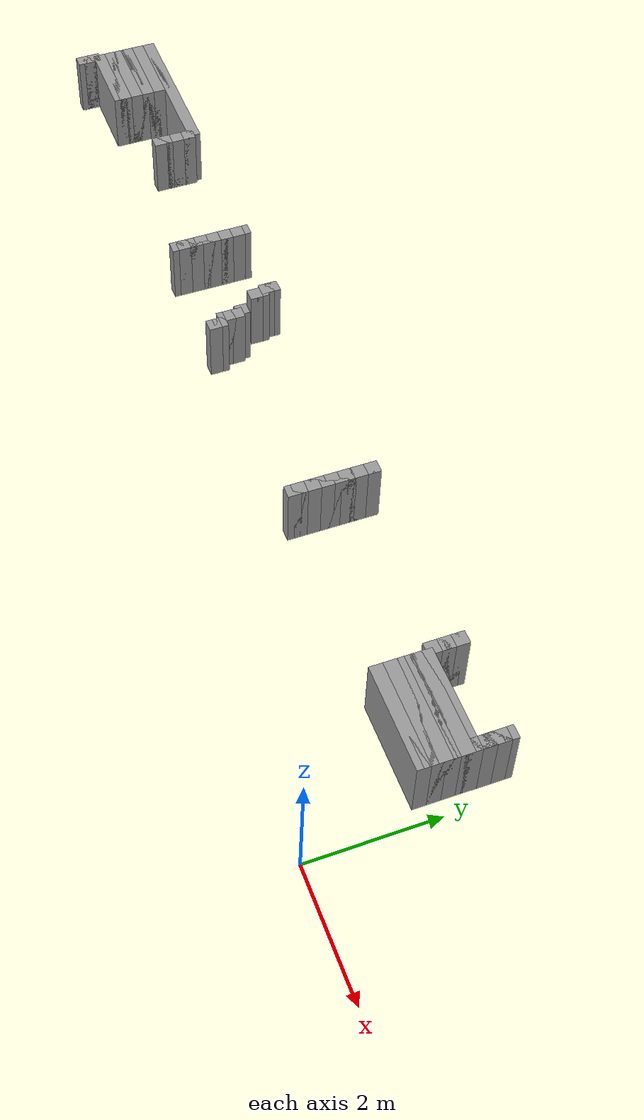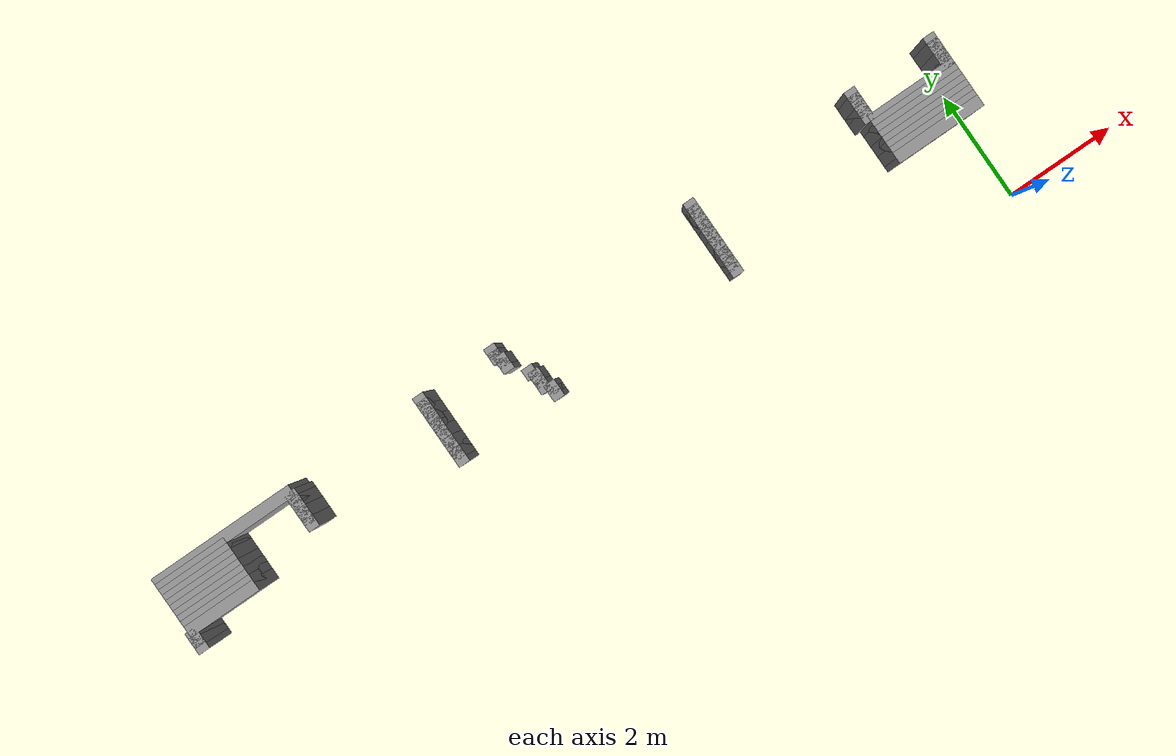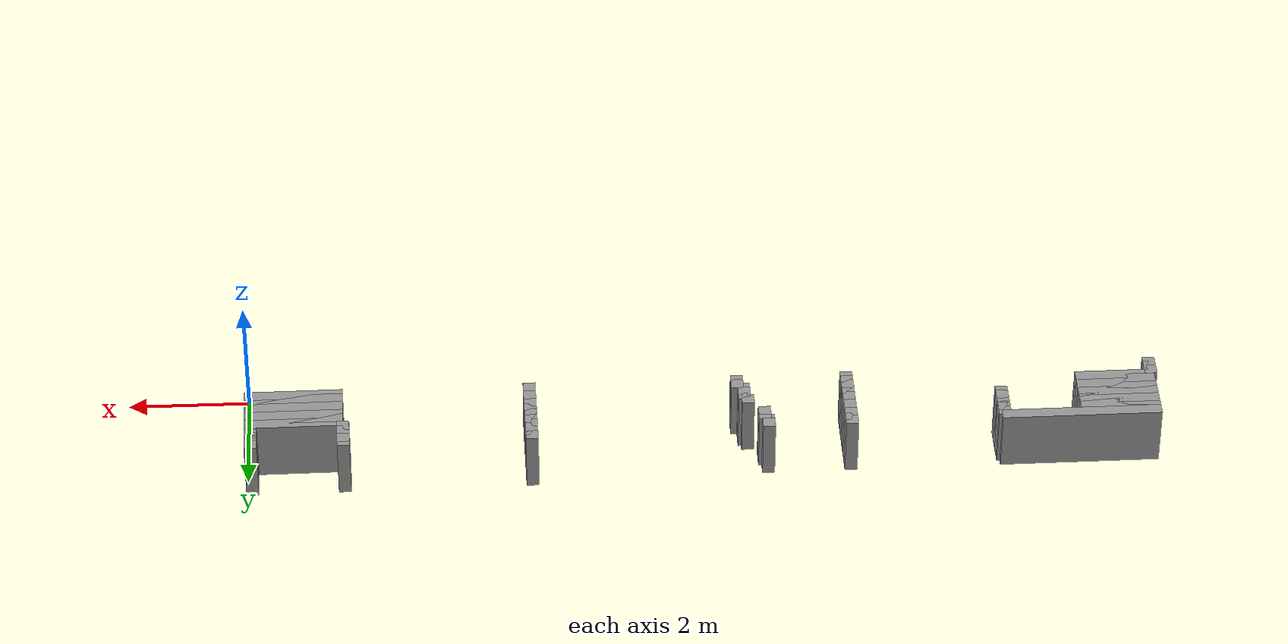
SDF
<sdf version="1.6">
 <world name="GridMap">
  <model name="GridMap">
   <link name="Wall_(148.5,15.0)">
    <collision name="Wall_(148.5,15.0)_Collision">
     <geometry><box><size>0.2 0.2 1.0</size></box></geometry>
     <pose>-14.850000000000001 1.5 0.5 0 -0 0</pose>
    </collision>
    <visual name="Wall_(148.5,15.0)_Visual">
     <geometry><box><size>0.2 0.2 1.0</size></box></geometry>
     <pose>-14.850000000000001 1.5 0.5 0 -0 0</pose>
     <material>
      <script><uri>file://media/materials/scripts/gazebo.material</uri><name>Gazebo/Grey</name></script>
      <ambient>1 1 1 1</ambient>
     </material>
     <meta><layer>0</layer></meta>
    </visual>
    <pose>0 0 0.5 0 -0 0</pose>
   </link>
   <link name="Wall_(8.0,16.0)">
    <collision name="Wall_(8.0,16.0)_Collision">
     <geometry><box><size>1.6 0.2 1.0</size></box></geometry>
     <pose>-0.8 1.6 0.5 0 -0 0</pose>
    </collision>
    <visual name="Wall_(8.0,16.0)_Visual">
     <geometry><box><size>1.6 0.2 1.0</size></box></geometry>
     <pose>-0.8 1.6 0.5 0 -0 0</pose>
     <material>
      <script><uri>file://media/materials/scripts/gazebo.material</uri><name>Gazebo/Grey</name></script>
      <ambient>1 1 1 1</ambient>
     </material>
     <meta><layer>0</layer></meta>
    </visual>
    <pose>0 0 0.5 0 -0 0</pose>
   </link>
   <link name="Wall_(46.5,16.0)">
    <collision name="Wall_(46.5,16.0)_Collision">
     <geometry><box><size>0.2 0.2 1.0</size></box></geometry>
     <pose>-4.65 1.6 0.5 0 -0 0</pose>
    </collision>
    <visual name="Wall_(46.5,16.0)_Visual">
     <geometry><box><size>0.2 0.2 1.0</size></box></geometry>
     <pose>-4.65 1.6 0.5 0 -0 0</pose>
     <material>
      <script><uri>file://media/materials/scripts/gazebo.material</uri><name>Gazebo/Grey</name></script>
      <ambient>1 1 1 1</ambient>
     </material>
     <meta><layer>0</layer></meta>
    </visual>
    <pose>0 0 0.5 0 -0 0</pose>
   </link>
   <link name="Wall_(80.5,16.0)">
    <collision name="Wall_(80.5,16.0)_Collision">
     <geometry><box><size>0.2 0.2 1.0</size></box></geometry>
     <pose>-8.05 1.6 0.5 0 -0 0</pose>
    </collision>
    <visual name="Wall_(80.5,16.0)_Visual">
     <geometry><box><size>0.2 0.2 1.0</size></box></geometry>
     <pose>-8.05 1.6 0.5 0 -0 0</pose>
     <material>
      <script><uri>file://media/materials/scripts/gazebo.material</uri><name>Gazebo/Grey</name></script>
      <ambient>1 1 1 1</ambient>
     </material>
     <meta><layer>0</layer></meta>
    </visual>
    <pose>0 0 0.5 0 -0 0</pose>
   </link>
   <link name="Wall_(98.5,16.0)">
    <collision name="Wall_(98.5,16.0)_Collision">
     <geometry><box><size>0.2 0.2 1.0</size></box></geometry>
     <pose>-9.850000000000001 1.6 0.5 0 -0 0</pose>
    </collision>
    <visual name="Wall_(98.5,16.0)_Visual">
     <geometry><box><size>0.2 0.2 1.0</size></box></geometry>
     <pose>-9.850000000000001 1.6 0.5 0 -0 0</pose>
     <material>
      <script><uri>file://media/materials/scripts/gazebo.material</uri><name>Gazebo/Grey</name></script>
      <ambient>1 1 1 1</ambient>
     </material>
     <meta><layer>0</layer></meta>
    </visual>
    <pose>0 0 0.5 0 -0 0</pose>
   </link>
   <link name="Wall_(148.5,16.0)">
    <collision name="Wall_(148.5,16.0)_Collision">
     <geometry><box><size>0.2 0.2 1.0</size></box></geometry>
     <pose>-14.850000000000001 1.6 0.5 0 -0 0</pose>
    </collision>
    <visual name="Wall_(148.5,16.0)_Visual">
     <geometry><box><size>0.2 0.2 1.0</size></box></geometry>
     <pose>-14.850000000000001 1.6 0.5 0 -0 0</pose>
     <material>
      <script><uri>file://media/materials/scripts/gazebo.material</uri><name>Gazebo/Grey</name></script>
      <ambient>1 1 1 1</ambient>
     </material>
     <meta><layer>0</layer></meta>
    </visual>
    <pose>0 0 0.5 0 -0 0</pose>
   </link>
   <link name="Wall_(8.0,17.0)">
    <collision name="Wall_(8.0,17.0)_Collision">
     <geometry><box><size>1.6 0.2 1.0</size></box></geometry>
     <pose>-0.8 1.7000000000000002 0.5 0 -0 0</pose>
    </collision>
    <visual name="Wall_(8.0,17.0)_Visual">
     <geometry><box><size>1.6 0.2 1.0</size></box></geometry>
     <pose>-0.8 1.7000000000000002 0.5 0 -0 0</pose>
     <material>
      <script><uri>file://media/materials/scripts/gazebo.material</uri><name>Gazebo/Grey</name></script>
      <ambient>1 1 1 1</ambient>
     </material>
     <meta><layer>0</layer></meta>
    </visual>
    <pose>0 0 0.5 0 -0 0</pose>
   </link>
   <link name="Wall_(46.5,17.0)">
    <collision name="Wall_(46.5,17.0)_Collision">
     <geometry><box><size>0.2 0.2 1.0</size></box></geometry>
     <pose>-4.65 1.7000000000000002 0.5 0 -0 0</pose>
    </collision>
    <visual name="Wall_(46.5,17.0)_Visual">
     <geometry><box><size>0.2 0.2 1.0</size></box></geometry>
     <pose>-4.65 1.7000000000000002 0.5 0 -0 0</pose>
     <material>
      <script><uri>file://media/materials/scripts/gazebo.material</uri><name>Gazebo/Grey</name></script>
      <ambient>1 1 1 1</ambient>
     </material>
     <meta><layer>0</layer></meta>
    </visual>
    <pose>0 0 0.5 0 -0 0</pose>
   </link>
   <link name="Wall_(80.5,17.0)">
    <collision name="Wall_(80.5,17.0)_Collision">
     <geometry><box><size>0.2 0.2 1.0</size></box></geometry>
     <pose>-8.05 1.7000000000000002 0.5 0 -0 0</pose>
    </collision>
    <visual name="Wall_(80.5,17.0)_Visual">
     <geometry><box><size>0.2 0.2 1.0</size></box></geometry>
     <pose>-8.05 1.7000000000000002 0.5 0 -0 0</pose>
     <material>
      <script><uri>file://media/materials/scripts/gazebo.material</uri><name>Gazebo/Grey</name></script>
      <ambient>1 1 1 1</ambient>
     </material>
     <meta><layer>0</layer></meta>
    </visual>
    <pose>0 0 0.5 0 -0 0</pose>
   </link>
   <link name="Wall_(98.5,17.0)">
    <collision name="Wall_(98.5,17.0)_Collision">
     <geometry><box><size>0.2 0.2 1.0</size></box></geometry>
     <pose>-9.850000000000001 1.7000000000000002 0.5 0 -0 0</pose>
    </collision>
    <visual name="Wall_(98.5,17.0)_Visual">
     <geometry><box><size>0.2 0.2 1.0</size></box></geometry>
     <pose>-9.850000000000001 1.7000000000000002 0.5 0 -0 0</pose>
     <material>
      <script><uri>file://media/materials/scripts/gazebo.material</uri><name>Gazebo/Grey</name></script>
      <ambient>1 1 1 1</ambient>
     </material>
     <meta><layer>0</layer></meta>
    </visual>
    <pose>0 0 0.5 0 -0 0</pose>
   </link>
   <link name="Wall_(148.5,17.0)">
    <collision name="Wall_(148.5,17.0)_Collision">
     <geometry><box><size>0.2 0.2 1.0</size></box></geometry>
     <pose>-14.850000000000001 1.7000000000000002 0.5 0 -0 0</pose>
    </collision>
    <visual name="Wall_(148.5,17.0)_Visual">
     <geometry><box><size>0.2 0.2 1.0</size></box></geometry>
     <pose>-14.850000000000001 1.7000000000000002 0.5 0 -0 0</pose>
     <material>
      <script><uri>file://media/materials/scripts/gazebo.material</uri><name>Gazebo/Grey</name></script>
      <ambient>1 1 1 1</ambient>
     </material>
     <meta><layer>0</layer></meta>
    </visual>
    <pose>0 0 0.5 0 -0 0</pose>
   </link>
   <link name="Wall_(8.0,18.0)">
    <collision name="Wall_(8.0,18.0)_Collision">
     <geometry><box><size>1.6 0.2 1.0</size></box></geometry>
     <pose>-0.8 1.8 0.5 0 -0 0</pose>
    </collision>
    <visual name="Wall_(8.0,18.0)_Visual">
     <geometry><box><size>1.6 0.2 1.0</size></box></geometry>
     <pose>-0.8 1.8 0.5 0 -0 0</pose>
     <material>
      <script><uri>file://media/materials/scripts/gazebo.material</uri><name>Gazebo/Grey</name></script>
      <ambient>1 1 1 1</ambient>
     </material>
     <meta><layer>0</layer></meta>
    </visual>
    <pose>0 0 0.5 0 -0 0</pose>
   </link>
   <link name="Wall_(46.5,18.0)">
    <collision name="Wall_(46.5,18.0)_Collision">
     <geometry><box><size>0.2 0.2 1.0</size></box></geometry>
     <pose>-4.65 1.8 0.5 0 -0 0</pose>
    </collision>
    <visual name="Wall_(46.5,18.0)_Visual">
     <geometry><box><size>0.2 0.2 1.0</size></box></geometry>
     <pose>-4.65 1.8 0.5 0 -0 0</pose>
     <material>
      <script><uri>file://media/materials/scripts/gazebo.material</uri><name>Gazebo/Grey</name></script>
      <ambient>1 1 1 1</ambient>
     </material>
     <meta><layer>0</layer></meta>
    </visual>
    <pose>0 0 0.5 0 -0 0</pose>
   </link>
   <link name="Wall_(81.5,18.0)">
    <collision name="Wall_(81.5,18.0)_Collision">
     <geometry><box><size>0.2 0.2 1.0</size></box></geometry>
     <pose>-8.15 1.8 0.5 0 -0 0</pose>
    </collision>
    <visual name="Wall_(81.5,18.0)_Visual">
     <geometry><box><size>0.2 0.2 1.0</size></box></geometry>
     <pose>-8.15 1.8 0.5 0 -0 0</pose>
     <material>
      <script><uri>file://media/materials/scripts/gazebo.material</uri><name>Gazebo/Grey</name></script>
      <ambient>1 1 1 1</ambient>
     </material>
     <meta><layer>0</layer></meta>
    </visual>
    <pose>0 0 0.5 0 -0 0</pose>
   </link>
   <link name="Wall_(98.5,18.0)">
    <collision name="Wall_(98.5,18.0)_Collision">
     <geometry><box><size>0.2 0.2 1.0</size></box></geometry>
     <pose>-9.850000000000001 1.8 0.5 0 -0 0</pose>
    </collision>
    <visual name="Wall_(98.5,18.0)_Visual">
     <geometry><box><size>0.2 0.2 1.0</size></box></geometry>
     <pose>-9.850000000000001 1.8 0.5 0 -0 0</pose>
     <material>
      <script><uri>file://media/materials/scripts/gazebo.material</uri><name>Gazebo/Grey</name></script>
      <ambient>1 1 1 1</ambient>
     </material>
     <meta><layer>0</layer></meta>
    </visual>
    <pose>0 0 0.5 0 -0 0</pose>
   </link>
   <link name="Wall_(142.5,18.0)">
    <collision name="Wall_(142.5,18.0)_Collision">
     <geometry><box><size>1.3 0.2 1.0</size></box></geometry>
     <pose>-14.25 1.8 0.5 0 -0 0</pose>
    </collision>
    <visual name="Wall_(142.5,18.0)_Visual">
     <geometry><box><size>1.3 0.2 1.0</size></box></geometry>
     <pose>-14.25 1.8 0.5 0 -0 0</pose>
     <material>
      <script><uri>file://media/materials/scripts/gazebo.material</uri><name>Gazebo/Grey</name></script>
      <ambient>1 1 1 1</ambient>
     </material>
     <meta><layer>0</layer></meta>
    </visual>
    <pose>0 0 0.5 0 -0 0</pose>
   </link>
   <link name="Wall_(8.0,19.0)">
    <collision name="Wall_(8.0,19.0)_Collision">
     <geometry><box><size>1.6 0.2 1.0</size></box></geometry>
     <pose>-0.8 1.9000000000000001 0.5 0 -0 0</pose>
    </collision>
    <visual name="Wall_(8.0,19.0)_Visual">
     <geometry><box><size>1.6 0.2 1.0</size></box></geometry>
     <pose>-0.8 1.9000000000000001 0.5 0 -0 0</pose>
     <material>
      <script><uri>file://media/materials/scripts/gazebo.material</uri><name>Gazebo/Grey</name></script>
      <ambient>1 1 1 1</ambient>
     </material>
     <meta><layer>0</layer></meta>
    </visual>
    <pose>0 0 0.5 0 -0 0</pose>
   </link>
   <link name="Wall_(46.5,19.0)">
    <collision name="Wall_(46.5,19.0)_Collision">
     <geometry><box><size>0.2 0.2 1.0</size></box></geometry>
     <pose>-4.65 1.9000000000000001 0.5 0 -0 0</pose>
    </collision>
    <visual name="Wall_(46.5,19.0)_Visual">
     <geometry><box><size>0.2 0.2 1.0</size></box></geometry>
     <pose>-4.65 1.9000000000000001 0.5 0 -0 0</pose>
     <material>
      <script><uri>file://media/materials/scripts/gazebo.material</uri><name>Gazebo/Grey</name></script>
      <ambient>1 1 1 1</ambient>
     </material>
     <meta><layer>0</layer></meta>
    </visual>
    <pose>0 0 0.5 0 -0 0</pose>
   </link>
   <link name="Wall_(81.5,19.0)">
    <collision name="Wall_(81.5,19.0)_Collision">
     <geometry><box><size>0.2 0.2 1.0</size></box></geometry>
     <pose>-8.15 1.9000000000000001 0.5 0 -0 0</pose>
    </collision>
    <visual name="Wall_(81.5,19.0)_Visual">
     <geometry><box><size>0.2 0.2 1.0</size></box></geometry>
     <pose>-8.15 1.9000000000000001 0.5 0 -0 0</pose>
     <material>
      <script><uri>file://media/materials/scripts/gazebo.material</uri><name>Gazebo/Grey</name></script>
      <ambient>1 1 1 1</ambient>
     </material>
     <meta><layer>0</layer></meta>
    </visual>
    <pose>0 0 0.5 0 -0 0</pose>
   </link>
   <link name="Wall_(98.5,19.0)">
    <collision name="Wall_(98.5,19.0)_Collision">
     <geometry><box><size>0.2 0.2 1.0</size></box></geometry>
     <pose>-9.850000000000001 1.9000000000000001 0.5 0 -0 0</pose>
    </collision>
    <visual name="Wall_(98.5,19.0)_Visual">
     <geometry><box><size>0.2 0.2 1.0</size></box></geometry>
     <pose>-9.850000000000001 1.9000000000000001 0.5 0 -0 0</pose>
     <material>
      <script><uri>file://media/materials/scripts/gazebo.material</uri><name>Gazebo/Grey</name></script>
      <ambient>1 1 1 1</ambient>
     </material>
     <meta><layer>0</layer></meta>
    </visual>
    <pose>0 0 0.5 0 -0 0</pose>
   </link>
   <link name="Wall_(142.5,19.0)">
    <collision name="Wall_(142.5,19.0)_Collision">
     <geometry><box><size>1.3 0.2 1.0</size></box></geometry>
     <pose>-14.25 1.9000000000000001 0.5 0 -0 0</pose>
    </collision>
    <visual name="Wall_(142.5,19.0)_Visual">
     <geometry><box><size>1.3 0.2 1.0</size></box></geometry>
     <pose>-14.25 1.9000000000000001 0.5 0 -0 0</pose>
     <material>
      <script><uri>file://media/materials/scripts/gazebo.material</uri><name>Gazebo/Grey</name></script>
      <ambient>1 1 1 1</ambient>
     </material>
     <meta><layer>0</layer></meta>
    </visual>
    <pose>0 0 0.5 0 -0 0</pose>
   </link>
   <link name="Wall_(8.0,20.0)">
    <collision name="Wall_(8.0,20.0)_Collision">
     <geometry><box><size>1.6 0.2 1.0</size></box></geometry>
     <pose>-0.8 2.0 0.5 0 -0 0</pose>
    </collision>
    <visual name="Wall_(8.0,20.0)_Visual">
     <geometry><box><size>1.6 0.2 1.0</size></box></geometry>
     <pose>-0.8 2.0 0.5 0 -0 0</pose>
     <material>
      <script><uri>file://media/materials/scripts/gazebo.material</uri><name>Gazebo/Grey</name></script>
      <ambient>1 1 1 1</ambient>
     </material>
     <meta><layer>0</layer></meta>
    </visual>
    <pose>0 0 0.5 0 -0 0</pose>
   </link>
   <link name="Wall_(46.5,20.0)">
    <collision name="Wall_(46.5,20.0)_Collision">
     <geometry><box><size>0.2 0.2 1.0</size></box></geometry>
     <pose>-4.65 2.0 0.5 0 -0 0</pose>
    </collision>
    <visual name="Wall_(46.5,20.0)_Visual">
     <geometry><box><size>0.2 0.2 1.0</size></box></geometry>
     <pose>-4.65 2.0 0.5 0 -0 0</pose>
     <material>
      <script><uri>file://media/materials/scripts/gazebo.material</uri><name>Gazebo/Grey</name></script>
      <ambient>1 1 1 1</ambient>
     </material>
     <meta><layer>0</layer></meta>
    </visual>
    <pose>0 0 0.5 0 -0 0</pose>
   </link>
   <link name="Wall_(81.5,20.0)">
    <collision name="Wall_(81.5,20.0)_Collision">
     <geometry><box><size>0.2 0.2 1.0</size></box></geometry>
     <pose>-8.15 2.0 0.5 0 -0 0</pose>
    </collision>
    <visual name="Wall_(81.5,20.0)_Visual">
     <geometry><box><size>0.2 0.2 1.0</size></box></geometry>
     <pose>-8.15 2.0 0.5 0 -0 0</pose>
     <material>
      <script><uri>file://media/materials/scripts/gazebo.material</uri><name>Gazebo/Grey</name></script>
      <ambient>1 1 1 1</ambient>
     </material>
     <meta><layer>0</layer></meta>
    </visual>
    <pose>0 0 0.5 0 -0 0</pose>
   </link>
   <link name="Wall_(98.5,20.0)">
    <collision name="Wall_(98.5,20.0)_Collision">
     <geometry><box><size>0.2 0.2 1.0</size></box></geometry>
     <pose>-9.850000000000001 2.0 0.5 0 -0 0</pose>
    </collision>
    <visual name="Wall_(98.5,20.0)_Visual">
     <geometry><box><size>0.2 0.2 1.0</size></box></geometry>
     <pose>-9.850000000000001 2.0 0.5 0 -0 0</pose>
     <material>
      <script><uri>file://media/materials/scripts/gazebo.material</uri><name>Gazebo/Grey</name></script>
      <ambient>1 1 1 1</ambient>
     </material>
     <meta><layer>0</layer></meta>
    </visual>
    <pose>0 0 0.5 0 -0 0</pose>
   </link>
   <link name="Wall_(142.5,20.0)">
    <collision name="Wall_(142.5,20.0)_Collision">
     <geometry><box><size>1.3 0.2 1.0</size></box></geometry>
     <pose>-14.25 2.0 0.5 0 -0 0</pose>
    </collision>
    <visual name="Wall_(142.5,20.0)_Visual">
     <geometry><box><size>1.3 0.2 1.0</size></box></geometry>
     <pose>-14.25 2.0 0.5 0 -0 0</pose>
     <material>
      <script><uri>file://media/materials/scripts/gazebo.material</uri><name>Gazebo/Grey</name></script>
      <ambient>1 1 1 1</ambient>
     </material>
     <meta><layer>0</layer></meta>
    </visual>
    <pose>0 0 0.5 0 -0 0</pose>
   </link>
   <link name="Wall_(8.0,21.0)">
    <collision name="Wall_(8.0,21.0)_Collision">
     <geometry><box><size>1.6 0.2 1.0</size></box></geometry>
     <pose>-0.8 2.1 0.5 0 -0 0</pose>
    </collision>
    <visual name="Wall_(8.0,21.0)_Visual">
     <geometry><box><size>1.6 0.2 1.0</size></box></geometry>
     <pose>-0.8 2.1 0.5 0 -0 0</pose>
     <material>
      <script><uri>file://media/materials/scripts/gazebo.material</uri><name>Gazebo/Grey</name></script>
      <ambient>1 1 1 1</ambient>
     </material>
     <meta><layer>0</layer></meta>
    </visual>
    <pose>0 0 0.5 0 -0 0</pose>
   </link>
   <link name="Wall_(46.5,21.0)">
    <collision name="Wall_(46.5,21.0)_Collision">
     <geometry><box><size>0.2 0.2 1.0</size></box></geometry>
     <pose>-4.65 2.1 0.5 0 -0 0</pose>
    </collision>
    <visual name="Wall_(46.5,21.0)_Visual">
     <geometry><box><size>0.2 0.2 1.0</size></box></geometry>
     <pose>-4.65 2.1 0.5 0 -0 0</pose>
     <material>
      <script><uri>file://media/materials/scripts/gazebo.material</uri><name>Gazebo/Grey</name></script>
      <ambient>1 1 1 1</ambient>
     </material>
     <meta><layer>0</layer></meta>
    </visual>
    <pose>0 0 0.5 0 -0 0</pose>
   </link>
   <link name="Wall_(82.0,21.0)">
    <collision name="Wall_(82.0,21.0)_Collision">
     <geometry><box><size>0.2 0.2 1.0</size></box></geometry>
     <pose>-8.200000000000001 2.1 0.5 0 -0 0</pose>
    </collision>
    <visual name="Wall_(82.0,21.0)_Visual">
     <geometry><box><size>0.2 0.2 1.0</size></box></geometry>
     <pose>-8.200000000000001 2.1 0.5 0 -0 0</pose>
     <material>
      <script><uri>file://media/materials/scripts/gazebo.material</uri><name>Gazebo/Grey</name></script>
      <ambient>1 1 1 1</ambient>
     </material>
     <meta><layer>0</layer></meta>
    </visual>
    <pose>0 0 0.5 0 -0 0</pose>
   </link>
   <link name="Wall_(98.5,21.0)">
    <collision name="Wall_(98.5,21.0)_Collision">
     <geometry><box><size>0.2 0.2 1.0</size></box></geometry>
     <pose>-9.850000000000001 2.1 0.5 0 -0 0</pose>
    </collision>
    <visual name="Wall_(98.5,21.0)_Visual">
     <geometry><box><size>0.2 0.2 1.0</size></box></geometry>
     <pose>-9.850000000000001 2.1 0.5 0 -0 0</pose>
     <material>
      <script><uri>file://media/materials/scripts/gazebo.material</uri><name>Gazebo/Grey</name></script>
      <ambient>1 1 1 1</ambient>
     </material>
     <meta><layer>0</layer></meta>
    </visual>
    <pose>0 0 0.5 0 -0 0</pose>
   </link>
   <link name="Wall_(123.5,21.0)">
    <collision name="Wall_(123.5,21.0)_Collision">
     <geometry><box><size>0.2 0.2 1.0</size></box></geometry>
     <pose>-12.350000000000001 2.1 0.5 0 -0 0</pose>
    </collision>
    <visual name="Wall_(123.5,21.0)_Visual">
     <geometry><box><size>0.2 0.2 1.0</size></box></geometry>
     <pose>-12.350000000000001 2.1 0.5 0 -0 0</pose>
     <material>
      <script><uri>file://media/materials/scripts/gazebo.material</uri><name>Gazebo/Grey</name></script>
      <ambient>1 1 1 1</ambient>
     </material>
     <meta><layer>0</layer></meta>
    </visual>
    <pose>0 0 0.5 0 -0 0</pose>
   </link>
   <link name="Wall_(142.5,21.0)">
    <collision name="Wall_(142.5,21.0)_Collision">
     <geometry><box><size>1.3 0.2 1.0</size></box></geometry>
     <pose>-14.25 2.1 0.5 0 -0 0</pose>
    </collision>
    <visual name="Wall_(142.5,21.0)_Visual">
     <geometry><box><size>1.3 0.2 1.0</size></box></geometry>
     <pose>-14.25 2.1 0.5 0 -0 0</pose>
     <material>
      <script><uri>file://media/materials/scripts/gazebo.material</uri><name>Gazebo/Grey</name></script>
      <ambient>1 1 1 1</ambient>
     </material>
     <meta><layer>0</layer></meta>
    </visual>
    <pose>0 0 0.5 0 -0 0</pose>
   </link>
   <link name="Wall_(8.0,22.0)">
    <collision name="Wall_(8.0,22.0)_Collision">
     <geometry><box><size>1.6 0.2 1.0</size></box></geometry>
     <pose>-0.8 2.2 0.5 0 -0 0</pose>
    </collision>
    <visual name="Wall_(8.0,22.0)_Visual">
     <geometry><box><size>1.6 0.2 1.0</size></box></geometry>
     <pose>-0.8 2.2 0.5 0 -0 0</pose>
     <material>
      <script><uri>file://media/materials/scripts/gazebo.material</uri><name>Gazebo/Grey</name></script>
      <ambient>1 1 1 1</ambient>
     </material>
     <meta><layer>0</layer></meta>
    </visual>
    <pose>0 0 0.5 0 -0 0</pose>
   </link>
   <link name="Wall_(46.5,22.0)">
    <collision name="Wall_(46.5,22.0)_Collision">
     <geometry><box><size>0.2 0.2 1.0</size></box></geometry>
     <pose>-4.65 2.2 0.5 0 -0 0</pose>
    </collision>
    <visual name="Wall_(46.5,22.0)_Visual">
     <geometry><box><size>0.2 0.2 1.0</size></box></geometry>
     <pose>-4.65 2.2 0.5 0 -0 0</pose>
     <material>
      <script><uri>file://media/materials/scripts/gazebo.material</uri><name>Gazebo/Grey</name></script>
      <ambient>1 1 1 1</ambient>
     </material>
     <meta><layer>0</layer></meta>
    </visual>
    <pose>0 0 0.5 0 -0 0</pose>
   </link>
   <link name="Wall_(98.5,22.0)">
    <collision name="Wall_(98.5,22.0)_Collision">
     <geometry><box><size>0.2 0.2 1.0</size></box></geometry>
     <pose>-9.850000000000001 2.2 0.5 0 -0 0</pose>
    </collision>
    <visual name="Wall_(98.5,22.0)_Visual">
     <geometry><box><size>0.2 0.2 1.0</size></box></geometry>
     <pose>-9.850000000000001 2.2 0.5 0 -0 0</pose>
     <material>
      <script><uri>file://media/materials/scripts/gazebo.material</uri><name>Gazebo/Grey</name></script>
      <ambient>1 1 1 1</ambient>
     </material>
     <meta><layer>0</layer></meta>
    </visual>
    <pose>0 0 0.5 0 -0 0</pose>
   </link>
   <link name="Wall_(123.5,22.0)">
    <collision name="Wall_(123.5,22.0)_Collision">
     <geometry><box><size>0.2 0.2 1.0</size></box></geometry>
     <pose>-12.350000000000001 2.2 0.5 0 -0 0</pose>
    </collision>
    <visual name="Wall_(123.5,22.0)_Visual">
     <geometry><box><size>0.2 0.2 1.0</size></box></geometry>
     <pose>-12.350000000000001 2.2 0.5 0 -0 0</pose>
     <material>
      <script><uri>file://media/materials/scripts/gazebo.material</uri><name>Gazebo/Grey</name></script>
      <ambient>1 1 1 1</ambient>
     </material>
     <meta><layer>0</layer></meta>
    </visual>
    <pose>0 0 0.5 0 -0 0</pose>
   </link>
   <link name="Wall_(142.5,22.0)">
    <collision name="Wall_(142.5,22.0)_Collision">
     <geometry><box><size>1.3 0.2 1.0</size></box></geometry>
     <pose>-14.25 2.2 0.5 0 -0 0</pose>
    </collision>
    <visual name="Wall_(142.5,22.0)_Visual">
     <geometry><box><size>1.3 0.2 1.0</size></box></geometry>
     <pose>-14.25 2.2 0.5 0 -0 0</pose>
     <material>
      <script><uri>file://media/materials/scripts/gazebo.material</uri><name>Gazebo/Grey</name></script>
      <ambient>1 1 1 1</ambient>
     </material>
     <meta><layer>0</layer></meta>
    </visual>
    <pose>0 0 0.5 0 -0 0</pose>
   </link>
   <link name="Wall_(8.0,23.0)">
    <collision name="Wall_(8.0,23.0)_Collision">
     <geometry><box><size>1.6 0.2 1.0</size></box></geometry>
     <pose>-0.8 2.3000000000000003 0.5 0 -0 0</pose>
    </collision>
    <visual name="Wall_(8.0,23.0)_Visual">
     <geometry><box><size>1.6 0.2 1.0</size></box></geometry>
     <pose>-0.8 2.3000000000000003 0.5 0 -0 0</pose>
     <material>
      <script><uri>file://media/materials/scripts/gazebo.material</uri><name>Gazebo/Grey</name></script>
      <ambient>1 1 1 1</ambient>
     </material>
     <meta><layer>0</layer></meta>
    </visual>
    <pose>0 0 0.5 0 -0 0</pose>
   </link>
   <link name="Wall_(46.5,23.0)">
    <collision name="Wall_(46.5,23.0)_Collision">
     <geometry><box><size>0.2 0.2 1.0</size></box></geometry>
     <pose>-4.65 2.3000000000000003 0.5 0 -0 0</pose>
    </collision>
    <visual name="Wall_(46.5,23.0)_Visual">
     <geometry><box><size>0.2 0.2 1.0</size></box></geometry>
     <pose>-4.65 2.3000000000000003 0.5 0 -0 0</pose>
     <material>
      <script><uri>file://media/materials/scripts/gazebo.material</uri><name>Gazebo/Grey</name></script>
      <ambient>1 1 1 1</ambient>
     </material>
     <meta><layer>0</layer></meta>
    </visual>
    <pose>0 0 0.5 0 -0 0</pose>
   </link>
   <link name="Wall_(98.5,23.0)">
    <collision name="Wall_(98.5,23.0)_Collision">
     <geometry><box><size>0.2 0.2 1.0</size></box></geometry>
     <pose>-9.850000000000001 2.3000000000000003 0.5 0 -0 0</pose>
    </collision>
    <visual name="Wall_(98.5,23.0)_Visual">
     <geometry><box><size>0.2 0.2 1.0</size></box></geometry>
     <pose>-9.850000000000001 2.3000000000000003 0.5 0 -0 0</pose>
     <material>
      <script><uri>file://media/materials/scripts/gazebo.material</uri><name>Gazebo/Grey</name></script>
      <ambient>1 1 1 1</ambient>
     </material>
     <meta><layer>0</layer></meta>
    </visual>
    <pose>0 0 0.5 0 -0 0</pose>
   </link>
   <link name="Wall_(123.5,23.0)">
    <collision name="Wall_(123.5,23.0)_Collision">
     <geometry><box><size>0.2 0.2 1.0</size></box></geometry>
     <pose>-12.350000000000001 2.3000000000000003 0.5 0 -0 0</pose>
    </collision>
    <visual name="Wall_(123.5,23.0)_Visual">
     <geometry><box><size>0.2 0.2 1.0</size></box></geometry>
     <pose>-12.350000000000001 2.3000000000000003 0.5 0 -0 0</pose>
     <material>
      <script><uri>file://media/materials/scripts/gazebo.material</uri><name>Gazebo/Grey</name></script>
      <ambient>1 1 1 1</ambient>
     </material>
     <meta><layer>0</layer></meta>
    </visual>
    <pose>0 0 0.5 0 -0 0</pose>
   </link>
   <link name="Wall_(142.5,23.0)">
    <collision name="Wall_(142.5,23.0)_Collision">
     <geometry><box><size>1.3 0.2 1.0</size></box></geometry>
     <pose>-14.25 2.3000000000000003 0.5 0 -0 0</pose>
    </collision>
    <visual name="Wall_(142.5,23.0)_Visual">
     <geometry><box><size>1.3 0.2 1.0</size></box></geometry>
     <pose>-14.25 2.3000000000000003 0.5 0 -0 0</pose>
     <material>
      <script><uri>file://media/materials/scripts/gazebo.material</uri><name>Gazebo/Grey</name></script>
      <ambient>1 1 1 1</ambient>
     </material>
     <meta><layer>0</layer></meta>
    </visual>
    <pose>0 0 0.5 0 -0 0</pose>
   </link>
   <link name="Wall_(1.0,24.0)">
    <collision name="Wall_(1.0,24.0)_Collision">
     <geometry><box><size>0.2 0.2 1.0</size></box></geometry>
     <pose>-0.1 2.4000000000000004 0.5 0 -0 0</pose>
    </collision>
    <visual name="Wall_(1.0,24.0)_Visual">
     <geometry><box><size>0.2 0.2 1.0</size></box></geometry>
     <pose>-0.1 2.4000000000000004 0.5 0 -0 0</pose>
     <material>
      <script><uri>file://media/materials/scripts/gazebo.material</uri><name>Gazebo/Grey</name></script>
      <ambient>1 1 1 1</ambient>
     </material>
     <meta><layer>0</layer></meta>
    </visual>
    <pose>0 0 0.5 0 -0 0</pose>
   </link>
   <link name="Wall_(16.0,24.0)">
    <collision name="Wall_(16.0,24.0)_Collision">
     <geometry><box><size>0.2 0.2 1.0</size></box></geometry>
     <pose>-1.6 2.4000000000000004 0.5 0 -0 0</pose>
    </collision>
    <visual name="Wall_(16.0,24.0)_Visual">
     <geometry><box><size>0.2 0.2 1.0</size></box></geometry>
     <pose>-1.6 2.4000000000000004 0.5 0 -0 0</pose>
     <material>
      <script><uri>file://media/materials/scripts/gazebo.material</uri><name>Gazebo/Grey</name></script>
      <ambient>1 1 1 1</ambient>
     </material>
     <meta><layer>0</layer></meta>
    </visual>
    <pose>0 0 0.5 0 -0 0</pose>
   </link>
   <link name="Wall_(46.5,24.0)">
    <collision name="Wall_(46.5,24.0)_Collision">
     <geometry><box><size>0.2 0.2 1.0</size></box></geometry>
     <pose>-4.65 2.4000000000000004 0.5 0 -0 0</pose>
    </collision>
    <visual name="Wall_(46.5,24.0)_Visual">
     <geometry><box><size>0.2 0.2 1.0</size></box></geometry>
     <pose>-4.65 2.4000000000000004 0.5 0 -0 0</pose>
     <material>
      <script><uri>file://media/materials/scripts/gazebo.material</uri><name>Gazebo/Grey</name></script>
      <ambient>1 1 1 1</ambient>
     </material>
     <meta><layer>0</layer></meta>
    </visual>
    <pose>0 0 0.5 0 -0 0</pose>
   </link>
   <link name="Wall_(84.5,24.0)">
    <collision name="Wall_(84.5,24.0)_Collision">
     <geometry><box><size>0.2 0.2 1.0</size></box></geometry>
     <pose>-8.450000000000001 2.4000000000000004 0.5 0 -0 0</pose>
    </collision>
    <visual name="Wall_(84.5,24.0)_Visual">
     <geometry><box><size>0.2 0.2 1.0</size></box></geometry>
     <pose>-8.450000000000001 2.4000000000000004 0.5 0 -0 0</pose>
     <material>
      <script><uri>file://media/materials/scripts/gazebo.material</uri><name>Gazebo/Grey</name></script>
      <ambient>1 1 1 1</ambient>
     </material>
     <meta><layer>0</layer></meta>
    </visual>
    <pose>0 0 0.5 0 -0 0</pose>
   </link>
   <link name="Wall_(98.5,24.0)">
    <collision name="Wall_(98.5,24.0)_Collision">
     <geometry><box><size>0.2 0.2 1.0</size></box></geometry>
     <pose>-9.850000000000001 2.4000000000000004 0.5 0 -0 0</pose>
    </collision>
    <visual name="Wall_(98.5,24.0)_Visual">
     <geometry><box><size>0.2 0.2 1.0</size></box></geometry>
     <pose>-9.850000000000001 2.4000000000000004 0.5 0 -0 0</pose>
     <material>
      <script><uri>file://media/materials/scripts/gazebo.material</uri><name>Gazebo/Grey</name></script>
      <ambient>1 1 1 1</ambient>
     </material>
     <meta><layer>0</layer></meta>
    </visual>
    <pose>0 0 0.5 0 -0 0</pose>
   </link>
   <link name="Wall_(123.5,24.0)">
    <collision name="Wall_(123.5,24.0)_Collision">
     <geometry><box><size>0.2 0.2 1.0</size></box></geometry>
     <pose>-12.350000000000001 2.4000000000000004 0.5 0 -0 0</pose>
    </collision>
    <visual name="Wall_(123.5,24.0)_Visual">
     <geometry><box><size>0.2 0.2 1.0</size></box></geometry>
     <pose>-12.350000000000001 2.4000000000000004 0.5 0 -0 0</pose>
     <material>
      <script><uri>file://media/materials/scripts/gazebo.material</uri><name>Gazebo/Grey</name></script>
      <ambient>1 1 1 1</ambient>
     </material>
     <meta><layer>0</layer></meta>
    </visual>
    <pose>0 0 0.5 0 -0 0</pose>
   </link>
   <link name="Wall_(142.5,24.0)">
    <collision name="Wall_(142.5,24.0)_Collision">
     <geometry><box><size>1.3 0.2 1.0</size></box></geometry>
     <pose>-14.25 2.4000000000000004 0.5 0 -0 0</pose>
    </collision>
    <visual name="Wall_(142.5,24.0)_Visual">
     <geometry><box><size>1.3 0.2 1.0</size></box></geometry>
     <pose>-14.25 2.4000000000000004 0.5 0 -0 0</pose>
     <material>
      <script><uri>file://media/materials/scripts/gazebo.material</uri><name>Gazebo/Grey</name></script>
      <ambient>1 1 1 1</ambient>
     </material>
     <meta><layer>0</layer></meta>
    </visual>
    <pose>0 0 0.5 0 -0 0</pose>
   </link>
   <link name="Wall_(1.0,25.0)">
    <collision name="Wall_(1.0,25.0)_Collision">
     <geometry><box><size>0.2 0.2 1.0</size></box></geometry>
     <pose>-0.1 2.5 0.5 0 -0 0</pose>
    </collision>
    <visual name="Wall_(1.0,25.0)_Visual">
     <geometry><box><size>0.2 0.2 1.0</size></box></geometry>
     <pose>-0.1 2.5 0.5 0 -0 0</pose>
     <material>
      <script><uri>file://media/materials/scripts/gazebo.material</uri><name>Gazebo/Grey</name></script>
      <ambient>1 1 1 1</ambient>
     </material>
     <meta><layer>0</layer></meta>
    </visual>
    <pose>0 0 0.5 0 -0 0</pose>
   </link>
   <link name="Wall_(16.0,25.0)">
    <collision name="Wall_(16.0,25.0)_Collision">
     <geometry><box><size>0.2 0.2 1.0</size></box></geometry>
     <pose>-1.6 2.5 0.5 0 -0 0</pose>
    </collision>
    <visual name="Wall_(16.0,25.0)_Visual">
     <geometry><box><size>0.2 0.2 1.0</size></box></geometry>
     <pose>-1.6 2.5 0.5 0 -0 0</pose>
     <material>
      <script><uri>file://media/materials/scripts/gazebo.material</uri><name>Gazebo/Grey</name></script>
      <ambient>1 1 1 1</ambient>
     </material>
     <meta><layer>0</layer></meta>
    </visual>
    <pose>0 0 0.5 0 -0 0</pose>
   </link>
   <link name="Wall_(46.5,25.0)">
    <collision name="Wall_(46.5,25.0)_Collision">
     <geometry><box><size>0.2 0.2 1.0</size></box></geometry>
     <pose>-4.65 2.5 0.5 0 -0 0</pose>
    </collision>
    <visual name="Wall_(46.5,25.0)_Visual">
     <geometry><box><size>0.2 0.2 1.0</size></box></geometry>
     <pose>-4.65 2.5 0.5 0 -0 0</pose>
     <material>
      <script><uri>file://media/materials/scripts/gazebo.material</uri><name>Gazebo/Grey</name></script>
      <ambient>1 1 1 1</ambient>
     </material>
     <meta><layer>0</layer></meta>
    </visual>
    <pose>0 0 0.5 0 -0 0</pose>
   </link>
   <link name="Wall_(84.5,25.0)">
    <collision name="Wall_(84.5,25.0)_Collision">
     <geometry><box><size>0.2 0.2 1.0</size></box></geometry>
     <pose>-8.450000000000001 2.5 0.5 0 -0 0</pose>
    </collision>
    <visual name="Wall_(84.5,25.0)_Visual">
     <geometry><box><size>0.2 0.2 1.0</size></box></geometry>
     <pose>-8.450000000000001 2.5 0.5 0 -0 0</pose>
     <material>
      <script><uri>file://media/materials/scripts/gazebo.material</uri><name>Gazebo/Grey</name></script>
      <ambient>1 1 1 1</ambient>
     </material>
     <meta><layer>0</layer></meta>
    </visual>
    <pose>0 0 0.5 0 -0 0</pose>
   </link>
   <link name="Wall_(98.5,25.0)">
    <collision name="Wall_(98.5,25.0)_Collision">
     <geometry><box><size>0.2 0.2 1.0</size></box></geometry>
     <pose>-9.850000000000001 2.5 0.5 0 -0 0</pose>
    </collision>
    <visual name="Wall_(98.5,25.0)_Visual">
     <geometry><box><size>0.2 0.2 1.0</size></box></geometry>
     <pose>-9.850000000000001 2.5 0.5 0 -0 0</pose>
     <material>
      <script><uri>file://media/materials/scripts/gazebo.material</uri><name>Gazebo/Grey</name></script>
      <ambient>1 1 1 1</ambient>
     </material>
     <meta><layer>0</layer></meta>
    </visual>
    <pose>0 0 0.5 0 -0 0</pose>
   </link>
   <link name="Wall_(123.5,25.0)">
    <collision name="Wall_(123.5,25.0)_Collision">
     <geometry><box><size>0.2 0.2 1.0</size></box></geometry>
     <pose>-12.350000000000001 2.5 0.5 0 -0 0</pose>
    </collision>
    <visual name="Wall_(123.5,25.0)_Visual">
     <geometry><box><size>0.2 0.2 1.0</size></box></geometry>
     <pose>-12.350000000000001 2.5 0.5 0 -0 0</pose>
     <material>
      <script><uri>file://media/materials/scripts/gazebo.material</uri><name>Gazebo/Grey</name></script>
      <ambient>1 1 1 1</ambient>
     </material>
     <meta><layer>0</layer></meta>
    </visual>
    <pose>0 0 0.5 0 -0 0</pose>
   </link>
   <link name="Wall_(142.5,25.0)">
    <collision name="Wall_(142.5,25.0)_Collision">
     <geometry><box><size>1.3 0.2 1.0</size></box></geometry>
     <pose>-14.25 2.5 0.5 0 -0 0</pose>
    </collision>
    <visual name="Wall_(142.5,25.0)_Visual">
     <geometry><box><size>1.3 0.2 1.0</size></box></geometry>
     <pose>-14.25 2.5 0.5 0 -0 0</pose>
     <material>
      <script><uri>file://media/materials/scripts/gazebo.material</uri><name>Gazebo/Grey</name></script>
      <ambient>1 1 1 1</ambient>
     </material>
     <meta><layer>0</layer></meta>
    </visual>
    <pose>0 0 0.5 0 -0 0</pose>
   </link>
   <link name="Wall_(1.0,26.0)">
    <collision name="Wall_(1.0,26.0)_Collision">
     <geometry><box><size>0.2 0.2 1.0</size></box></geometry>
     <pose>-0.1 2.6 0.5 0 -0 0</pose>
    </collision>
    <visual name="Wall_(1.0,26.0)_Visual">
     <geometry><box><size>0.2 0.2 1.0</size></box></geometry>
     <pose>-0.1 2.6 0.5 0 -0 0</pose>
     <material>
      <script><uri>file://media/materials/scripts/gazebo.material</uri><name>Gazebo/Grey</name></script>
      <ambient>1 1 1 1</ambient>
     </material>
     <meta><layer>0</layer></meta>
    </visual>
    <pose>0 0 0.5 0 -0 0</pose>
   </link>
   <link name="Wall_(16.0,26.0)">
    <collision name="Wall_(16.0,26.0)_Collision">
     <geometry><box><size>0.2 0.2 1.0</size></box></geometry>
     <pose>-1.6 2.6 0.5 0 -0 0</pose>
    </collision>
    <visual name="Wall_(16.0,26.0)_Visual">
     <geometry><box><size>0.2 0.2 1.0</size></box></geometry>
     <pose>-1.6 2.6 0.5 0 -0 0</pose>
     <material>
      <script><uri>file://media/materials/scripts/gazebo.material</uri><name>Gazebo/Grey</name></script>
      <ambient>1 1 1 1</ambient>
     </material>
     <meta><layer>0</layer></meta>
    </visual>
    <pose>0 0 0.5 0 -0 0</pose>
   </link>
   <link name="Wall_(46.5,26.0)">
    <collision name="Wall_(46.5,26.0)_Collision">
     <geometry><box><size>0.2 0.2 1.0</size></box></geometry>
     <pose>-4.65 2.6 0.5 0 -0 0</pose>
    </collision>
    <visual name="Wall_(46.5,26.0)_Visual">
     <geometry><box><size>0.2 0.2 1.0</size></box></geometry>
     <pose>-4.65 2.6 0.5 0 -0 0</pose>
     <material>
      <script><uri>file://media/materials/scripts/gazebo.material</uri><name>Gazebo/Grey</name></script>
      <ambient>1 1 1 1</ambient>
     </material>
     <meta><layer>0</layer></meta>
    </visual>
    <pose>0 0 0.5 0 -0 0</pose>
   </link>
   <link name="Wall_(85.0,26.0)">
    <collision name="Wall_(85.0,26.0)_Collision">
     <geometry><box><size>0.2 0.2 1.0</size></box></geometry>
     <pose>-8.5 2.6 0.5 0 -0 0</pose>
    </collision>
    <visual name="Wall_(85.0,26.0)_Visual">
     <geometry><box><size>0.2 0.2 1.0</size></box></geometry>
     <pose>-8.5 2.6 0.5 0 -0 0</pose>
     <material>
      <script><uri>file://media/materials/scripts/gazebo.material</uri><name>Gazebo/Grey</name></script>
      <ambient>1 1 1 1</ambient>
     </material>
     <meta><layer>0</layer></meta>
    </visual>
    <pose>0 0 0.5 0 -0 0</pose>
   </link>
   <link name="Wall_(98.5,26.0)">
    <collision name="Wall_(98.5,26.0)_Collision">
     <geometry><box><size>0.2 0.2 1.0</size></box></geometry>
     <pose>-9.850000000000001 2.6 0.5 0 -0 0</pose>
    </collision>
    <visual name="Wall_(98.5,26.0)_Visual">
     <geometry><box><size>0.2 0.2 1.0</size></box></geometry>
     <pose>-9.850000000000001 2.6 0.5 0 -0 0</pose>
     <material>
      <script><uri>file://media/materials/scripts/gazebo.material</uri><name>Gazebo/Grey</name></script>
      <ambient>1 1 1 1</ambient>
     </material>
     <meta><layer>0</layer></meta>
    </visual>
    <pose>0 0 0.5 0 -0 0</pose>
   </link>
   <link name="Wall_(123.5,26.0)">
    <collision name="Wall_(123.5,26.0)_Collision">
     <geometry><box><size>0.2 0.2 1.0</size></box></geometry>
     <pose>-12.350000000000001 2.6 0.5 0 -0 0</pose>
    </collision>
    <visual name="Wall_(123.5,26.0)_Visual">
     <geometry><box><size>0.2 0.2 1.0</size></box></geometry>
     <pose>-12.350000000000001 2.6 0.5 0 -0 0</pose>
     <material>
      <script><uri>file://media/materials/scripts/gazebo.material</uri><name>Gazebo/Grey</name></script>
      <ambient>1 1 1 1</ambient>
     </material>
     <meta><layer>0</layer></meta>
    </visual>
    <pose>0 0 0.5 0 -0 0</pose>
   </link>
   <link name="Wall_(142.5,26.0)">
    <collision name="Wall_(142.5,26.0)_Collision">
     <geometry><box><size>1.3 0.2 1.0</size></box></geometry>
     <pose>-14.25 2.6 0.5 0 -0 0</pose>
    </collision>
    <visual name="Wall_(142.5,26.0)_Visual">
     <geometry><box><size>1.3 0.2 1.0</size></box></geometry>
     <pose>-14.25 2.6 0.5 0 -0 0</pose>
     <material>
      <script><uri>file://media/materials/scripts/gazebo.material</uri><name>Gazebo/Grey</name></script>
      <ambient>1 1 1 1</ambient>
     </material>
     <meta><layer>0</layer></meta>
    </visual>
    <pose>0 0 0.5 0 -0 0</pose>
   </link>
   <link name="Wall_(1.0,27.0)">
    <collision name="Wall_(1.0,27.0)_Collision">
     <geometry><box><size>0.2 0.2 1.0</size></box></geometry>
     <pose>-0.1 2.7 0.5 0 -0 0</pose>
    </collision>
    <visual name="Wall_(1.0,27.0)_Visual">
     <geometry><box><size>0.2 0.2 1.0</size></box></geometry>
     <pose>-0.1 2.7 0.5 0 -0 0</pose>
     <material>
      <script><uri>file://media/materials/scripts/gazebo.material</uri><name>Gazebo/Grey</name></script>
      <ambient>1 1 1 1</ambient>
     </material>
     <meta><layer>0</layer></meta>
    </visual>
    <pose>0 0 0.5 0 -0 0</pose>
   </link>
   <link name="Wall_(16.0,27.0)">
    <collision name="Wall_(16.0,27.0)_Collision">
     <geometry><box><size>0.2 0.2 1.0</size></box></geometry>
     <pose>-1.6 2.7 0.5 0 -0 0</pose>
    </collision>
    <visual name="Wall_(16.0,27.0)_Visual">
     <geometry><box><size>0.2 0.2 1.0</size></box></geometry>
     <pose>-1.6 2.7 0.5 0 -0 0</pose>
     <material>
      <script><uri>file://media/materials/scripts/gazebo.material</uri><name>Gazebo/Grey</name></script>
      <ambient>1 1 1 1</ambient>
     </material>
     <meta><layer>0</layer></meta>
    </visual>
    <pose>0 0 0.5 0 -0 0</pose>
   </link>
   <link name="Wall_(46.5,27.0)">
    <collision name="Wall_(46.5,27.0)_Collision">
     <geometry><box><size>0.2 0.2 1.0</size></box></geometry>
     <pose>-4.65 2.7 0.5 0 -0 0</pose>
    </collision>
    <visual name="Wall_(46.5,27.0)_Visual">
     <geometry><box><size>0.2 0.2 1.0</size></box></geometry>
     <pose>-4.65 2.7 0.5 0 -0 0</pose>
     <material>
      <script><uri>file://media/materials/scripts/gazebo.material</uri><name>Gazebo/Grey</name></script>
      <ambient>1 1 1 1</ambient>
     </material>
     <meta><layer>0</layer></meta>
    </visual>
    <pose>0 0 0.5 0 -0 0</pose>
   </link>
   <link name="Wall_(85.0,27.0)">
    <collision name="Wall_(85.0,27.0)_Collision">
     <geometry><box><size>0.2 0.2 1.0</size></box></geometry>
     <pose>-8.5 2.7 0.5 0 -0 0</pose>
    </collision>
    <visual name="Wall_(85.0,27.0)_Visual">
     <geometry><box><size>0.2 0.2 1.0</size></box></geometry>
     <pose>-8.5 2.7 0.5 0 -0 0</pose>
     <material>
      <script><uri>file://media/materials/scripts/gazebo.material</uri><name>Gazebo/Grey</name></script>
      <ambient>1 1 1 1</ambient>
     </material>
     <meta><layer>0</layer></meta>
    </visual>
    <pose>0 0 0.5 0 -0 0</pose>
   </link>
   <link name="Wall_(98.5,27.0)">
    <collision name="Wall_(98.5,27.0)_Collision">
     <geometry><box><size>0.2 0.2 1.0</size></box></geometry>
     <pose>-9.850000000000001 2.7 0.5 0 -0 0</pose>
    </collision>
    <visual name="Wall_(98.5,27.0)_Visual">
     <geometry><box><size>0.2 0.2 1.0</size></box></geometry>
     <pose>-9.850000000000001 2.7 0.5 0 -0 0</pose>
     <material>
      <script><uri>file://media/materials/scripts/gazebo.material</uri><name>Gazebo/Grey</name></script>
      <ambient>1 1 1 1</ambient>
     </material>
     <meta><layer>0</layer></meta>
    </visual>
    <pose>0 0 0.5 0 -0 0</pose>
   </link>
   <link name="Wall_(136.0,27.0)">
    <collision name="Wall_(136.0,27.0)_Collision">
     <geometry><box><size>2.6 0.2 1.0</size></box></geometry>
     <pose>-13.600000000000001 2.7 0.5 0 -0 0</pose>
    </collision>
    <visual name="Wall_(136.0,27.0)_Visual">
     <geometry><box><size>2.6 0.2 1.0</size></box></geometry>
     <pose>-13.600000000000001 2.7 0.5 0 -0 0</pose>
     <material>
      <script><uri>file://media/materials/scripts/gazebo.material</uri><name>Gazebo/Grey</name></script>
      <ambient>1 1 1 1</ambient>
     </material>
     <meta><layer>0</layer></meta>
    </visual>
    <pose>0 0 0.5 0 -0 0</pose>
   </link>
   <link name="Wall_(1.0,28.0)">
    <collision name="Wall_(1.0,28.0)_Collision">
     <geometry><box><size>0.2 0.2 1.0</size></box></geometry>
     <pose>-0.1 2.8000000000000003 0.5 0 -0 0</pose>
    </collision>
    <visual name="Wall_(1.0,28.0)_Visual">
     <geometry><box><size>0.2 0.2 1.0</size></box></geometry>
     <pose>-0.1 2.8000000000000003 0.5 0 -0 0</pose>
     <material>
      <script><uri>file://media/materials/scripts/gazebo.material</uri><name>Gazebo/Grey</name></script>
      <ambient>1 1 1 1</ambient>
     </material>
     <meta><layer>0</layer></meta>
    </visual>
    <pose>0 0 0.5 0 -0 0</pose>
   </link>
   <link name="Wall_(16.0,28.0)">
    <collision name="Wall_(16.0,28.0)_Collision">
     <geometry><box><size>0.2 0.2 1.0</size></box></geometry>
     <pose>-1.6 2.8000000000000003 0.5 0 -0 0</pose>
    </collision>
    <visual name="Wall_(16.0,28.0)_Visual">
     <geometry><box><size>0.2 0.2 1.0</size></box></geometry>
     <pose>-1.6 2.8000000000000003 0.5 0 -0 0</pose>
     <material>
      <script><uri>file://media/materials/scripts/gazebo.material</uri><name>Gazebo/Grey</name></script>
      <ambient>1 1 1 1</ambient>
     </material>
     <meta><layer>0</layer></meta>
    </visual>
    <pose>0 0 0.5 0 -0 0</pose>
   </link>
   <link name="Wall_(46.5,28.0)">
    <collision name="Wall_(46.5,28.0)_Collision">
     <geometry><box><size>0.2 0.2 1.0</size></box></geometry>
     <pose>-4.65 2.8000000000000003 0.5 0 -0 0</pose>
    </collision>
    <visual name="Wall_(46.5,28.0)_Visual">
     <geometry><box><size>0.2 0.2 1.0</size></box></geometry>
     <pose>-4.65 2.8000000000000003 0.5 0 -0 0</pose>
     <material>
      <script><uri>file://media/materials/scripts/gazebo.material</uri><name>Gazebo/Grey</name></script>
      <ambient>1 1 1 1</ambient>
     </material>
     <meta><layer>0</layer></meta>
    </visual>
    <pose>0 0 0.5 0 -0 0</pose>
   </link>
   <static>1</static>
  </model>
 </world>
</sdf>
